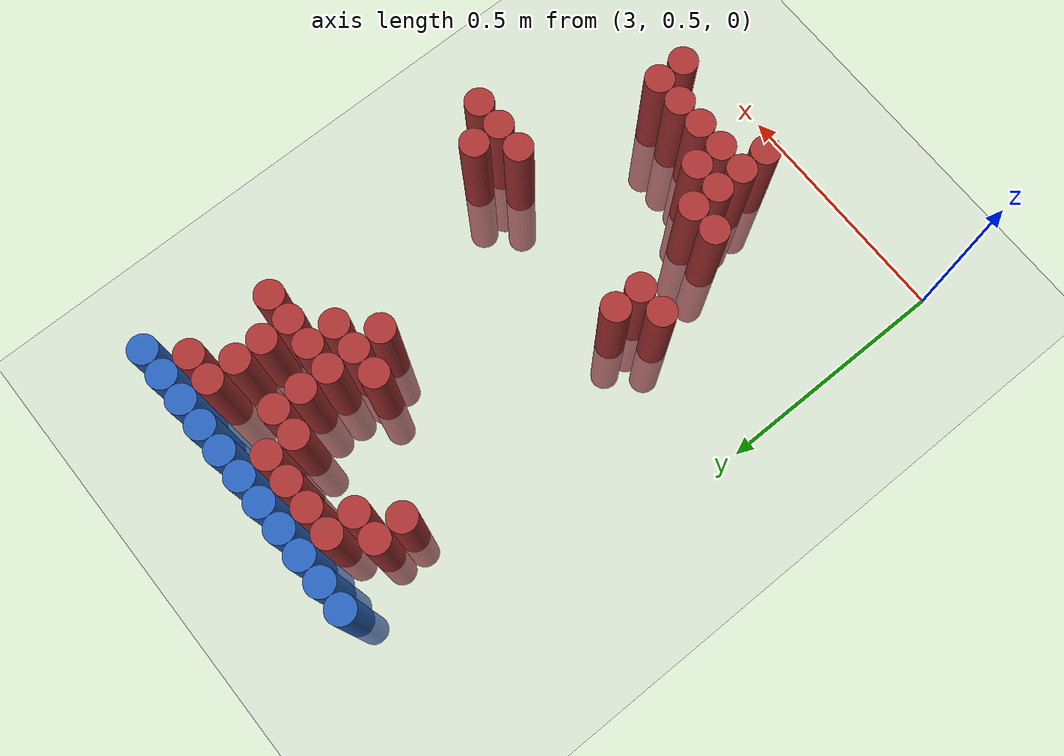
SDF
<sdf version="1.6">
 <world name="default">
  <model name="ground_plane">
   <static>1</static>
   <link name="link">
    <collision name="collision">
     <geometry><plane><normal>0 0 1</normal><size>100 100</size></plane></geometry>
     <surface><friction><ode><mu>100</mu><mu2>50</mu2></ode></friction></surface>
    </collision>
    <visual name="visual">
     <cast_shadows>0</cast_shadows>
     <geometry><plane><normal>0 0 1</normal><size>100 100</size></plane></geometry>
     <material>
      <script><uri>file://media/materials/scripts/gazebo.material</uri><name>Gazebo/Grey</name></script>
     </material>
    </visual>
   </link>
  </model>
  <model name="unit_cylinder_114">
   <static>1</static>
   <pose>3.210000 1.770000 0.000000 0.000000 0.000000 0.000000</pose>
   <link name="link">
    <inertial>
     <mass>1</mass>
     <inertia><ixx>0.145833</ixx><ixy>0</ixy><ixz>0</ixz><iyy>0.145833</iyy><iyz>0</iyz><izz>0.125</izz></inertia>
    </inertial>
    <collision name="collision">
     <geometry><cylinder><radius>0.030000</radius><length>0.5</length></cylinder></geometry>
    </collision>
    <visual name="visual">
     <geometry><cylinder><radius>0.030000</radius><length>0.5</length></cylinder></geometry>
     <material>
      <ambient>0.152000 0.379000 0.720000 1</ambient>
      <diffuse>0.152000 0.379000 0.720000 1</diffuse>
     </material>
     <material>
      <script><name>Gazebo/Grey</name><uri>file://media/materials/scripts/gazebo.material</uri></script>
     </material>
    </visual>
   </link>
  </model>
  <model name="unit_cylinder_115">
   <static>1</static>
   <pose>3.270000 1.770000 0.000000 0.000000 0.000000 0.000000</pose>
   <link name="link">
    <inertial>
     <mass>1</mass>
     <inertia><ixx>0.145833</ixx><ixy>0</ixy><ixz>0</ixz><iyy>0.145833</iyy><iyz>0</iyz><izz>0.125</izz></inertia>
    </inertial>
    <collision name="collision">
     <geometry><cylinder><radius>0.030000</radius><length>0.5</length></cylinder></geometry>
    </collision>
    <visual name="visual">
     <geometry><cylinder><radius>0.030000</radius><length>0.5</length></cylinder></geometry>
     <material>
      <ambient>0.152000 0.379000 0.720000 1</ambient>
      <diffuse>0.152000 0.379000 0.720000 1</diffuse>
     </material>
     <material>
      <script><name>Gazebo/Grey</name><uri>file://media/materials/scripts/gazebo.material</uri></script>
     </material>
    </visual>
   </link>
  </model>
  <model name="unit_cylinder_116">
   <static>1</static>
   <pose>3.330000 1.770000 0.000000 0.000000 0.000000 0.000000</pose>
   <link name="link">
    <inertial>
     <mass>1</mass>
     <inertia><ixx>0.145833</ixx><ixy>0</ixy><ixz>0</ixz><iyy>0.145833</iyy><iyz>0</iyz><izz>0.125</izz></inertia>
    </inertial>
    <collision name="collision">
     <geometry><cylinder><radius>0.030000</radius><length>0.5</length></cylinder></geometry>
    </collision>
    <visual name="visual">
     <geometry><cylinder><radius>0.030000</radius><length>0.5</length></cylinder></geometry>
     <material>
      <ambient>0.152000 0.379000 0.720000 1</ambient>
      <diffuse>0.152000 0.379000 0.720000 1</diffuse>
     </material>
     <material>
      <script><name>Gazebo/Grey</name><uri>file://media/materials/scripts/gazebo.material</uri></script>
     </material>
    </visual>
   </link>
  </model>
  <model name="unit_cylinder_117">
   <static>1</static>
   <pose>3.390000 1.770000 0.000000 0.000000 0.000000 0.000000</pose>
   <link name="link">
    <inertial>
     <mass>1</mass>
     <inertia><ixx>0.145833</ixx><ixy>0</ixy><ixz>0</ixz><iyy>0.145833</iyy><iyz>0</iyz><izz>0.125</izz></inertia>
    </inertial>
    <collision name="collision">
     <geometry><cylinder><radius>0.030000</radius><length>0.5</length></cylinder></geometry>
    </collision>
    <visual name="visual">
     <geometry><cylinder><radius>0.030000</radius><length>0.5</length></cylinder></geometry>
     <material>
      <ambient>0.152000 0.379000 0.720000 1</ambient>
      <diffuse>0.152000 0.379000 0.720000 1</diffuse>
     </material>
     <material>
      <script><name>Gazebo/Grey</name><uri>file://media/materials/scripts/gazebo.material</uri></script>
     </material>
    </visual>
   </link>
  </model>
  <model name="unit_cylinder_118">
   <static>1</static>
   <pose>3.450000 1.770000 0.000000 0.000000 0.000000 0.000000</pose>
   <link name="link">
    <inertial>
     <mass>1</mass>
     <inertia><ixx>0.145833</ixx><ixy>0</ixy><ixz>0</ixz><iyy>0.145833</iyy><iyz>0</iyz><izz>0.125</izz></inertia>
    </inertial>
    <collision name="collision">
     <geometry><cylinder><radius>0.030000</radius><length>0.5</length></cylinder></geometry>
    </collision>
    <visual name="visual">
     <geometry><cylinder><radius>0.030000</radius><length>0.5</length></cylinder></geometry>
     <material>
      <ambient>0.152000 0.379000 0.720000 1</ambient>
      <diffuse>0.152000 0.379000 0.720000 1</diffuse>
     </material>
     <material>
      <script><name>Gazebo/Grey</name><uri>file://media/materials/scripts/gazebo.material</uri></script>
     </material>
    </visual>
   </link>
  </model>
  <model name="unit_cylinder_119">
   <static>1</static>
   <pose>3.510000 1.770000 0.000000 0.000000 0.000000 0.000000</pose>
   <link name="link">
    <inertial>
     <mass>1</mass>
     <inertia><ixx>0.145833</ixx><ixy>0</ixy><ixz>0</ixz><iyy>0.145833</iyy><iyz>0</iyz><izz>0.125</izz></inertia>
    </inertial>
    <collision name="collision">
     <geometry><cylinder><radius>0.030000</radius><length>0.5</length></cylinder></geometry>
    </collision>
    <visual name="visual">
     <geometry><cylinder><radius>0.030000</radius><length>0.5</length></cylinder></geometry>
     <material>
      <ambient>0.152000 0.379000 0.720000 1</ambient>
      <diffuse>0.152000 0.379000 0.720000 1</diffuse>
     </material>
     <material>
      <script><name>Gazebo/Grey</name><uri>file://media/materials/scripts/gazebo.material</uri></script>
     </material>
    </visual>
   </link>
  </model>
  <model name="unit_cylinder_120">
   <static>1</static>
   <pose>3.570000 1.770000 0.000000 0.000000 0.000000 0.000000</pose>
   <link name="link">
    <inertial>
     <mass>1</mass>
     <inertia><ixx>0.145833</ixx><ixy>0</ixy><ixz>0</ixz><iyy>0.145833</iyy><iyz>0</iyz><izz>0.125</izz></inertia>
    </inertial>
    <collision name="collision">
     <geometry><cylinder><radius>0.030000</radius><length>0.5</length></cylinder></geometry>
    </collision>
    <visual name="visual">
     <geometry><cylinder><radius>0.030000</radius><length>0.5</length></cylinder></geometry>
     <material>
      <ambient>0.152000 0.379000 0.720000 1</ambient>
      <diffuse>0.152000 0.379000 0.720000 1</diffuse>
     </material>
     <material>
      <script><name>Gazebo/Grey</name><uri>file://media/materials/scripts/gazebo.material</uri></script>
     </material>
    </visual>
   </link>
  </model>
  <model name="unit_cylinder_121">
   <static>1</static>
   <pose>3.630000 1.770000 0.000000 0.000000 0.000000 0.000000</pose>
   <link name="link">
    <inertial>
     <mass>1</mass>
     <inertia><ixx>0.145833</ixx><ixy>0</ixy><ixz>0</ixz><iyy>0.145833</iyy><iyz>0</iyz><izz>0.125</izz></inertia>
    </inertial>
    <collision name="collision">
     <geometry><cylinder><radius>0.030000</radius><length>0.5</length></cylinder></geometry>
    </collision>
    <visual name="visual">
     <geometry><cylinder><radius>0.030000</radius><length>0.5</length></cylinder></geometry>
     <material>
      <ambient>0.152000 0.379000 0.720000 1</ambient>
      <diffuse>0.152000 0.379000 0.720000 1</diffuse>
     </material>
     <material>
      <script><name>Gazebo/Grey</name><uri>file://media/materials/scripts/gazebo.material</uri></script>
     </material>
    </visual>
   </link>
  </model>
  <model name="unit_cylinder_122">
   <static>1</static>
   <pose>3.690000 1.770000 0.000000 0.000000 0.000000 0.000000</pose>
   <link name="link">
    <inertial>
     <mass>1</mass>
     <inertia><ixx>0.145833</ixx><ixy>0</ixy><ixz>0</ixz><iyy>0.145833</iyy><iyz>0</iyz><izz>0.125</izz></inertia>
    </inertial>
    <collision name="collision">
     <geometry><cylinder><radius>0.030000</radius><length>0.5</length></cylinder></geometry>
    </collision>
    <visual name="visual">
     <geometry><cylinder><radius>0.030000</radius><length>0.5</length></cylinder></geometry>
     <material>
      <ambient>0.152000 0.379000 0.720000 1</ambient>
      <diffuse>0.152000 0.379000 0.720000 1</diffuse>
     </material>
     <material>
      <script><name>Gazebo/Grey</name><uri>file://media/materials/scripts/gazebo.material</uri></script>
     </material>
    </visual>
   </link>
  </model>
  <model name="unit_cylinder_123">
   <static>1</static>
   <pose>3.750000 1.770000 0.000000 0.000000 0.000000 0.000000</pose>
   <link name="link">
    <inertial>
     <mass>1</mass>
     <inertia><ixx>0.145833</ixx><ixy>0</ixy><ixz>0</ixz><iyy>0.145833</iyy><iyz>0</iyz><izz>0.125</izz></inertia>
    </inertial>
    <collision name="collision">
     <geometry><cylinder><radius>0.030000</radius><length>0.5</length></cylinder></geometry>
    </collision>
    <visual name="visual">
     <geometry><cylinder><radius>0.030000</radius><length>0.5</length></cylinder></geometry>
     <material>
      <ambient>0.152000 0.379000 0.720000 1</ambient>
      <diffuse>0.152000 0.379000 0.720000 1</diffuse>
     </material>
     <material>
      <script><name>Gazebo/Grey</name><uri>file://media/materials/scripts/gazebo.material</uri></script>
     </material>
    </visual>
   </link>
  </model>
  <model name="unit_cylinder_124">
   <static>1</static>
   <pose>3.810000 1.770000 0.000000 0.000000 0.000000 0.000000</pose>
   <link name="link">
    <inertial>
     <mass>1</mass>
     <inertia><ixx>0.145833</ixx><ixy>0</ixy><ixz>0</ixz><iyy>0.145833</iyy><iyz>0</iyz><izz>0.125</izz></inertia>
    </inertial>
    <collision name="collision">
     <geometry><cylinder><radius>0.030000</radius><length>0.5</length></cylinder></geometry>
    </collision>
    <visual name="visual">
     <geometry><cylinder><radius>0.030000</radius><length>0.5</length></cylinder></geometry>
     <material>
      <ambient>0.152000 0.379000 0.720000 1</ambient>
      <diffuse>0.152000 0.379000 0.720000 1</diffuse>
     </material>
     <material>
      <script><name>Gazebo/Grey</name><uri>file://media/materials/scripts/gazebo.material</uri></script>
     </material>
    </visual>
   </link>
  </model>
  <model name="unit_cylinder_137">
   <static>1</static>
   <pose>3.330000 1.710000 0.000000 0.000000 0.000000 0.000000</pose>
   <link name="link">
    <inertial>
     <mass>1</mass>
     <inertia><ixx>0.145833</ixx><ixy>0</ixy><ixz>0</ixz><iyy>0.145833</iyy><iyz>0</iyz><izz>0.125</izz></inertia>
    </inertial>
    <collision name="collision">
     <geometry><cylinder><radius>0.030000</radius><length>0.5</length></cylinder></geometry>
    </collision>
    <visual name="visual">
     <geometry><cylinder><radius>0.030000</radius><length>0.5</length></cylinder></geometry>
     <material>
      <ambient>0.648000 0.192000 0.192000 1</ambient>
      <diffuse>0.648000 0.192000 0.192000 1</diffuse>
     </material>
     <material>
      <script><name>Gazebo/Grey</name><uri>file://media/materials/scripts/gazebo.material</uri></script>
     </material>
    </visual>
   </link>
  </model>
  <model name="unit_cylinder_138">
   <static>1</static>
   <pose>3.390000 1.710000 0.000000 0.000000 0.000000 0.000000</pose>
   <link name="link">
    <inertial>
     <mass>1</mass>
     <inertia><ixx>0.145833</ixx><ixy>0</ixy><ixz>0</ixz><iyy>0.145833</iyy><iyz>0</iyz><izz>0.125</izz></inertia>
    </inertial>
    <collision name="collision">
     <geometry><cylinder><radius>0.030000</radius><length>0.5</length></cylinder></geometry>
    </collision>
    <visual name="visual">
     <geometry><cylinder><radius>0.030000</radius><length>0.5</length></cylinder></geometry>
     <material>
      <ambient>0.648000 0.192000 0.192000 1</ambient>
      <diffuse>0.648000 0.192000 0.192000 1</diffuse>
     </material>
     <material>
      <script><name>Gazebo/Grey</name><uri>file://media/materials/scripts/gazebo.material</uri></script>
     </material>
    </visual>
   </link>
  </model>
  <model name="unit_cylinder_139">
   <static>1</static>
   <pose>3.450000 1.710000 0.000000 0.000000 0.000000 0.000000</pose>
   <link name="link">
    <inertial>
     <mass>1</mass>
     <inertia><ixx>0.145833</ixx><ixy>0</ixy><ixz>0</ixz><iyy>0.145833</iyy><iyz>0</iyz><izz>0.125</izz></inertia>
    </inertial>
    <collision name="collision">
     <geometry><cylinder><radius>0.030000</radius><length>0.5</length></cylinder></geometry>
    </collision>
    <visual name="visual">
     <geometry><cylinder><radius>0.030000</radius><length>0.5</length></cylinder></geometry>
     <material>
      <ambient>0.648000 0.192000 0.192000 1</ambient>
      <diffuse>0.648000 0.192000 0.192000 1</diffuse>
     </material>
     <material>
      <script><name>Gazebo/Grey</name><uri>file://media/materials/scripts/gazebo.material</uri></script>
     </material>
    </visual>
   </link>
  </model>
  <model name="unit_cylinder_140">
   <static>1</static>
   <pose>3.510000 1.710000 0.000000 0.000000 0.000000 0.000000</pose>
   <link name="link">
    <inertial>
     <mass>1</mass>
     <inertia><ixx>0.145833</ixx><ixy>0</ixy><ixz>0</ixz><iyy>0.145833</iyy><iyz>0</iyz><izz>0.125</izz></inertia>
    </inertial>
    <collision name="collision">
     <geometry><cylinder><radius>0.030000</radius><length>0.5</length></cylinder></geometry>
    </collision>
    <visual name="visual">
     <geometry><cylinder><radius>0.030000</radius><length>0.5</length></cylinder></geometry>
     <material>
      <ambient>0.648000 0.192000 0.192000 1</ambient>
      <diffuse>0.648000 0.192000 0.192000 1</diffuse>
     </material>
     <material>
      <script><name>Gazebo/Grey</name><uri>file://media/materials/scripts/gazebo.material</uri></script>
     </material>
    </visual>
   </link>
  </model>
  <model name="unit_cylinder_141">
   <static>1</static>
   <pose>3.690000 1.710000 0.000000 0.000000 0.000000 0.000000</pose>
   <link name="link">
    <inertial>
     <mass>1</mass>
     <inertia><ixx>0.145833</ixx><ixy>0</ixy><ixz>0</ixz><iyy>0.145833</iyy><iyz>0</iyz><izz>0.125</izz></inertia>
    </inertial>
    <collision name="collision">
     <geometry><cylinder><radius>0.030000</radius><length>0.5</length></cylinder></geometry>
    </collision>
    <visual name="visual">
     <geometry><cylinder><radius>0.030000</radius><length>0.5</length></cylinder></geometry>
     <material>
      <ambient>0.648000 0.192000 0.192000 1</ambient>
      <diffuse>0.648000 0.192000 0.192000 1</diffuse>
     </material>
     <material>
      <script><name>Gazebo/Grey</name><uri>file://media/materials/scripts/gazebo.material</uri></script>
     </material>
    </visual>
   </link>
  </model>
  <model name="unit_cylinder_142">
   <static>1</static>
   <pose>3.750000 1.710000 0.000000 0.000000 0.000000 0.000000</pose>
   <link name="link">
    <inertial>
     <mass>1</mass>
     <inertia><ixx>0.145833</ixx><ixy>0</ixy><ixz>0</ixz><iyy>0.145833</iyy><iyz>0</iyz><izz>0.125</izz></inertia>
    </inertial>
    <collision name="collision">
     <geometry><cylinder><radius>0.030000</radius><length>0.5</length></cylinder></geometry>
    </collision>
    <visual name="visual">
     <geometry><cylinder><radius>0.030000</radius><length>0.5</length></cylinder></geometry>
     <material>
      <ambient>0.648000 0.192000 0.192000 1</ambient>
      <diffuse>0.648000 0.192000 0.192000 1</diffuse>
     </material>
     <material>
      <script><name>Gazebo/Grey</name><uri>file://media/materials/scripts/gazebo.material</uri></script>
     </material>
    </visual>
   </link>
  </model>
  <model name="unit_cylinder_149">
   <static>1</static>
   <pose>3.270000 1.650000 0.000000 0.000000 0.000000 0.000000</pose>
   <link name="link">
    <inertial>
     <mass>1</mass>
     <inertia><ixx>0.145833</ixx><ixy>0</ixy><ixz>0</ixz><iyy>0.145833</iyy><iyz>0</iyz><izz>0.125</izz></inertia>
    </inertial>
    <collision name="collision">
     <geometry><cylinder><radius>0.030000</radius><length>0.5</length></cylinder></geometry>
    </collision>
    <visual name="visual">
     <geometry><cylinder><radius>0.030000</radius><length>0.5</length></cylinder></geometry>
     <material>
      <ambient>0.648000 0.192000 0.192000 1</ambient>
      <diffuse>0.648000 0.192000 0.192000 1</diffuse>
     </material>
     <material>
      <script><name>Gazebo/Grey</name><uri>file://media/materials/scripts/gazebo.material</uri></script>
     </material>
    </visual>
   </link>
  </model>
  <model name="unit_cylinder_150">
   <static>1</static>
   <pose>3.330000 1.650000 0.000000 0.000000 0.000000 0.000000</pose>
   <link name="link">
    <inertial>
     <mass>1</mass>
     <inertia><ixx>0.145833</ixx><ixy>0</ixy><ixz>0</ixz><iyy>0.145833</iyy><iyz>0</iyz><izz>0.125</izz></inertia>
    </inertial>
    <collision name="collision">
     <geometry><cylinder><radius>0.030000</radius><length>0.5</length></cylinder></geometry>
    </collision>
    <visual name="visual">
     <geometry><cylinder><radius>0.030000</radius><length>0.5</length></cylinder></geometry>
     <material>
      <ambient>0.648000 0.192000 0.192000 1</ambient>
      <diffuse>0.648000 0.192000 0.192000 1</diffuse>
     </material>
     <material>
      <script><name>Gazebo/Grey</name><uri>file://media/materials/scripts/gazebo.material</uri></script>
     </material>
    </visual>
   </link>
  </model>
  <model name="unit_cylinder_151">
   <static>1</static>
   <pose>3.510000 1.650000 0.000000 0.000000 0.000000 0.000000</pose>
   <link name="link">
    <inertial>
     <mass>1</mass>
     <inertia><ixx>0.145833</ixx><ixy>0</ixy><ixz>0</ixz><iyy>0.145833</iyy><iyz>0</iyz><izz>0.125</izz></inertia>
    </inertial>
    <collision name="collision">
     <geometry><cylinder><radius>0.030000</radius><length>0.5</length></cylinder></geometry>
    </collision>
    <visual name="visual">
     <geometry><cylinder><radius>0.030000</radius><length>0.5</length></cylinder></geometry>
     <material>
      <ambient>0.648000 0.192000 0.192000 1</ambient>
      <diffuse>0.648000 0.192000 0.192000 1</diffuse>
     </material>
     <material>
      <script><name>Gazebo/Grey</name><uri>file://media/materials/scripts/gazebo.material</uri></script>
     </material>
    </visual>
   </link>
  </model>
  <model name="unit_cylinder_152">
   <static>1</static>
   <pose>3.570000 1.650000 0.000000 0.000000 0.000000 0.000000</pose>
   <link name="link">
    <inertial>
     <mass>1</mass>
     <inertia><ixx>0.145833</ixx><ixy>0</ixy><ixz>0</ixz><iyy>0.145833</iyy><iyz>0</iyz><izz>0.125</izz></inertia>
    </inertial>
    <collision name="collision">
     <geometry><cylinder><radius>0.030000</radius><length>0.5</length></cylinder></geometry>
    </collision>
    <visual name="visual">
     <geometry><cylinder><radius>0.030000</radius><length>0.5</length></cylinder></geometry>
     <material>
      <ambient>0.648000 0.192000 0.192000 1</ambient>
      <diffuse>0.648000 0.192000 0.192000 1</diffuse>
     </material>
     <material>
      <script><name>Gazebo/Grey</name><uri>file://media/materials/scripts/gazebo.material</uri></script>
     </material>
    </visual>
   </link>
  </model>
  <model name="unit_cylinder_153">
   <static>1</static>
   <pose>3.690000 1.650000 0.000000 0.000000 0.000000 0.000000</pose>
   <link name="link">
    <inertial>
     <mass>1</mass>
     <inertia><ixx>0.145833</ixx><ixy>0</ixy><ixz>0</ixz><iyy>0.145833</iyy><iyz>0</iyz><izz>0.125</izz></inertia>
    </inertial>
    <collision name="collision">
     <geometry><cylinder><radius>0.030000</radius><length>0.5</length></cylinder></geometry>
    </collision>
    <visual name="visual">
     <geometry><cylinder><radius>0.030000</radius><length>0.5</length></cylinder></geometry>
     <material>
      <ambient>0.648000 0.192000 0.192000 1</ambient>
      <diffuse>0.648000 0.192000 0.192000 1</diffuse>
     </material>
     <material>
      <script><name>Gazebo/Grey</name><uri>file://media/materials/scripts/gazebo.material</uri></script>
     </material>
    </visual>
   </link>
  </model>
  <model name="unit_cylinder_160">
   <static>1</static>
   <pose>3.270000 1.590000 0.000000 0.000000 0.000000 0.000000</pose>
   <link name="link">
    <inertial>
     <mass>1</mass>
     <inertia><ixx>0.145833</ixx><ixy>0</ixy><ixz>0</ixz><iyy>0.145833</iyy><iyz>0</iyz><izz>0.125</izz></inertia>
    </inertial>
    <collision name="collision">
     <geometry><cylinder><radius>0.030000</radius><length>0.5</length></cylinder></geometry>
    </collision>
    <visual name="visual">
     <geometry><cylinder><radius>0.030000</radius><length>0.5</length></cylinder></geometry>
     <material>
      <ambient>0.648000 0.192000 0.192000 1</ambient>
      <diffuse>0.648000 0.192000 0.192000 1</diffuse>
     </material>
     <material>
      <script><name>Gazebo/Grey</name><uri>file://media/materials/scripts/gazebo.material</uri></script>
     </material>
    </visual>
   </link>
  </model>
  <model name="unit_cylinder_161">
   <static>1</static>
   <pose>3.570000 1.590000 0.000000 0.000000 0.000000 0.000000</pose>
   <link name="link">
    <inertial>
     <mass>1</mass>
     <inertia><ixx>0.145833</ixx><ixy>0</ixy><ixz>0</ixz><iyy>0.145833</iyy><iyz>0</iyz><izz>0.125</izz></inertia>
    </inertial>
    <collision name="collision">
     <geometry><cylinder><radius>0.030000</radius><length>0.5</length></cylinder></geometry>
    </collision>
    <visual name="visual">
     <geometry><cylinder><radius>0.030000</radius><length>0.5</length></cylinder></geometry>
     <material>
      <ambient>0.648000 0.192000 0.192000 1</ambient>
      <diffuse>0.648000 0.192000 0.192000 1</diffuse>
     </material>
     <material>
      <script><name>Gazebo/Grey</name><uri>file://media/materials/scripts/gazebo.material</uri></script>
     </material>
    </visual>
   </link>
  </model>
  <model name="unit_cylinder_162">
   <static>1</static>
   <pose>3.690000 1.590000 0.000000 0.000000 0.000000 0.000000</pose>
   <link name="link">
    <inertial>
     <mass>1</mass>
     <inertia><ixx>0.145833</ixx><ixy>0</ixy><ixz>0</ixz><iyy>0.145833</iyy><iyz>0</iyz><izz>0.125</izz></inertia>
    </inertial>
    <collision name="collision">
     <geometry><cylinder><radius>0.030000</radius><length>0.5</length></cylinder></geometry>
    </collision>
    <visual name="visual">
     <geometry><cylinder><radius>0.030000</radius><length>0.5</length></cylinder></geometry>
     <material>
      <ambient>0.648000 0.192000 0.192000 1</ambient>
      <diffuse>0.648000 0.192000 0.192000 1</diffuse>
     </material>
     <material>
      <script><name>Gazebo/Grey</name><uri>file://media/materials/scripts/gazebo.material</uri></script>
     </material>
    </visual>
   </link>
  </model>
  <model name="unit_cylinder_169">
   <static>1</static>
   <pose>3.570000 1.530000 0.000000 0.000000 0.000000 0.000000</pose>
   <link name="link">
    <inertial>
     <mass>1</mass>
     <inertia><ixx>0.145833</ixx><ixy>0</ixy><ixz>0</ixz><iyy>0.145833</iyy><iyz>0</iyz><izz>0.125</izz></inertia>
    </inertial>
    <collision name="collision">
     <geometry><cylinder><radius>0.030000</radius><length>0.5</length></cylinder></geometry>
    </collision>
    <visual name="visual">
     <geometry><cylinder><radius>0.030000</radius><length>0.5</length></cylinder></geometry>
     <material>
      <ambient>0.648000 0.192000 0.192000 1</ambient>
      <diffuse>0.648000 0.192000 0.192000 1</diffuse>
     </material>
     <material>
      <script><name>Gazebo/Grey</name><uri>file://media/materials/scripts/gazebo.material</uri></script>
     </material>
    </visual>
   </link>
  </model>
  <model name="unit_cylinder_170">
   <static>1</static>
   <pose>3.630000 1.530000 0.000000 0.000000 0.000000 0.000000</pose>
   <link name="link">
    <inertial>
     <mass>1</mass>
     <inertia><ixx>0.145833</ixx><ixy>0</ixy><ixz>0</ixz><iyy>0.145833</iyy><iyz>0</iyz><izz>0.125</izz></inertia>
    </inertial>
    <collision name="collision">
     <geometry><cylinder><radius>0.030000</radius><length>0.5</length></cylinder></geometry>
    </collision>
    <visual name="visual">
     <geometry><cylinder><radius>0.030000</radius><length>0.5</length></cylinder></geometry>
     <material>
      <ambient>0.648000 0.192000 0.192000 1</ambient>
      <diffuse>0.648000 0.192000 0.192000 1</diffuse>
     </material>
     <material>
      <script><name>Gazebo/Grey</name><uri>file://media/materials/scripts/gazebo.material</uri></script>
     </material>
    </visual>
   </link>
  </model>
  <model name="unit_cylinder_171">
   <static>1</static>
   <pose>3.690000 1.530000 0.000000 0.000000 0.000000 0.000000</pose>
   <link name="link">
    <inertial>
     <mass>1</mass>
     <inertia><ixx>0.145833</ixx><ixy>0</ixy><ixz>0</ixz><iyy>0.145833</iyy><iyz>0</iyz><izz>0.125</izz></inertia>
    </inertial>
    <collision name="collision">
     <geometry><cylinder><radius>0.030000</radius><length>0.5</length></cylinder></geometry>
    </collision>
    <visual name="visual">
     <geometry><cylinder><radius>0.030000</radius><length>0.5</length></cylinder></geometry>
     <material>
      <ambient>0.648000 0.192000 0.192000 1</ambient>
      <diffuse>0.648000 0.192000 0.192000 1</diffuse>
     </material>
     <material>
      <script><name>Gazebo/Grey</name><uri>file://media/materials/scripts/gazebo.material</uri></script>
     </material>
    </visual>
   </link>
  </model>
  <model name="unit_cylinder_172">
   <static>1</static>
   <pose>3.750000 1.530000 0.000000 0.000000 0.000000 0.000000</pose>
   <link name="link">
    <inertial>
     <mass>1</mass>
     <inertia><ixx>0.145833</ixx><ixy>0</ixy><ixz>0</ixz><iyy>0.145833</iyy><iyz>0</iyz><izz>0.125</izz></inertia>
    </inertial>
    <collision name="collision">
     <geometry><cylinder><radius>0.030000</radius><length>0.5</length></cylinder></geometry>
    </collision>
    <visual name="visual">
     <geometry><cylinder><radius>0.030000</radius><length>0.5</length></cylinder></geometry>
     <material>
      <ambient>0.648000 0.192000 0.192000 1</ambient>
      <diffuse>0.648000 0.192000 0.192000 1</diffuse>
     </material>
     <material>
      <script><name>Gazebo/Grey</name><uri>file://media/materials/scripts/gazebo.material</uri></script>
     </material>
    </visual>
   </link>
  </model>
  <model name="unit_cylinder_178">
   <static>1</static>
   <pose>3.510000 1.470000 0.000000 0.000000 0.000000 0.000000</pose>
   <link name="link">
    <inertial>
     <mass>1</mass>
     <inertia><ixx>0.145833</ixx><ixy>0</ixy><ixz>0</ixz><iyy>0.145833</iyy><iyz>0</iyz><izz>0.125</izz></inertia>
    </inertial>
    <collision name="collision">
     <geometry><cylinder><radius>0.030000</radius><length>0.5</length></cylinder></geometry>
    </collision>
    <visual name="visual">
     <geometry><cylinder><radius>0.030000</radius><length>0.5</length></cylinder></geometry>
     <material>
      <ambient>0.648000 0.192000 0.192000 1</ambient>
      <diffuse>0.648000 0.192000 0.192000 1</diffuse>
     </material>
     <material>
      <script><name>Gazebo/Grey</name><uri>file://media/materials/scripts/gazebo.material</uri></script>
     </material>
    </visual>
   </link>
  </model>
  <model name="unit_cylinder_179">
   <static>1</static>
   <pose>3.570000 1.470000 0.000000 0.000000 0.000000 0.000000</pose>
   <link name="link">
    <inertial>
     <mass>1</mass>
     <inertia><ixx>0.145833</ixx><ixy>0</ixy><ixz>0</ixz><iyy>0.145833</iyy><iyz>0</iyz><izz>0.125</izz></inertia>
    </inertial>
    <collision name="collision">
     <geometry><cylinder><radius>0.030000</radius><length>0.5</length></cylinder></geometry>
    </collision>
    <visual name="visual">
     <geometry><cylinder><radius>0.030000</radius><length>0.5</length></cylinder></geometry>
     <material>
      <ambient>0.648000 0.192000 0.192000 1</ambient>
      <diffuse>0.648000 0.192000 0.192000 1</diffuse>
     </material>
     <material>
      <script><name>Gazebo/Grey</name><uri>file://media/materials/scripts/gazebo.material</uri></script>
     </material>
    </visual>
   </link>
  </model>
  <model name="unit_cylinder_180">
   <static>1</static>
   <pose>3.630000 1.470000 0.000000 0.000000 0.000000 0.000000</pose>
   <link name="link">
    <inertial>
     <mass>1</mass>
     <inertia><ixx>0.145833</ixx><ixy>0</ixy><ixz>0</ixz><iyy>0.145833</iyy><iyz>0</iyz><izz>0.125</izz></inertia>
    </inertial>
    <collision name="collision">
     <geometry><cylinder><radius>0.030000</radius><length>0.5</length></cylinder></geometry>
    </collision>
    <visual name="visual">
     <geometry><cylinder><radius>0.030000</radius><length>0.5</length></cylinder></geometry>
     <material>
      <ambient>0.648000 0.192000 0.192000 1</ambient>
      <diffuse>0.648000 0.192000 0.192000 1</diffuse>
     </material>
     <material>
      <script><name>Gazebo/Grey</name><uri>file://media/materials/scripts/gazebo.material</uri></script>
     </material>
    </visual>
   </link>
  </model>
  <model name="unit_cylinder_185">
   <static>1</static>
   <pose>3.570000 1.410000 0.000000 0.000000 0.000000 0.000000</pose>
   <link name="link">
    <inertial>
     <mass>1</mass>
     <inertia><ixx>0.145833</ixx><ixy>0</ixy><ixz>0</ixz><iyy>0.145833</iyy><iyz>0</iyz><izz>0.125</izz></inertia>
    </inertial>
    <collision name="collision">
     <geometry><cylinder><radius>0.030000</radius><length>0.5</length></cylinder></geometry>
    </collision>
    <visual name="visual">
     <geometry><cylinder><radius>0.030000</radius><length>0.5</length></cylinder></geometry>
     <material>
      <ambient>0.648000 0.192000 0.192000 1</ambient>
      <diffuse>0.648000 0.192000 0.192000 1</diffuse>
     </material>
     <material>
      <script><name>Gazebo/Grey</name><uri>file://media/materials/scripts/gazebo.material</uri></script>
     </material>
    </visual>
   </link>
  </model>
  <model name="unit_cylinder_194">
   <static>1</static>
   <pose>3.330000 1.050000 0.000000 0.000000 0.000000 0.000000</pose>
   <link name="link">
    <inertial>
     <mass>1</mass>
     <inertia><ixx>0.145833</ixx><ixy>0</ixy><ixz>0</ixz><iyy>0.145833</iyy><iyz>0</iyz><izz>0.125</izz></inertia>
    </inertial>
    <collision name="collision">
     <geometry><cylinder><radius>0.030000</radius><length>0.5</length></cylinder></geometry>
    </collision>
    <visual name="visual">
     <geometry><cylinder><radius>0.030000</radius><length>0.5</length></cylinder></geometry>
     <material>
      <ambient>0.648000 0.192000 0.192000 1</ambient>
      <diffuse>0.648000 0.192000 0.192000 1</diffuse>
     </material>
     <material>
      <script><name>Gazebo/Grey</name><uri>file://media/materials/scripts/gazebo.material</uri></script>
     </material>
    </visual>
   </link>
  </model>
  <model name="unit_cylinder_195">
   <static>1</static>
   <pose>3.750000 1.050000 0.000000 0.000000 0.000000 0.000000</pose>
   <link name="link">
    <inertial>
     <mass>1</mass>
     <inertia><ixx>0.145833</ixx><ixy>0</ixy><ixz>0</ixz><iyy>0.145833</iyy><iyz>0</iyz><izz>0.125</izz></inertia>
    </inertial>
    <collision name="collision">
     <geometry><cylinder><radius>0.030000</radius><length>0.5</length></cylinder></geometry>
    </collision>
    <visual name="visual">
     <geometry><cylinder><radius>0.030000</radius><length>0.5</length></cylinder></geometry>
     <material>
      <ambient>0.648000 0.192000 0.192000 1</ambient>
      <diffuse>0.648000 0.192000 0.192000 1</diffuse>
     </material>
     <material>
      <script><name>Gazebo/Grey</name><uri>file://media/materials/scripts/gazebo.material</uri></script>
     </material>
    </visual>
   </link>
  </model>
  <model name="unit_cylinder_198">
   <static>1</static>
   <pose>3.270000 0.990000 0.000000 0.000000 0.000000 0.000000</pose>
   <link name="link">
    <inertial>
     <mass>1</mass>
     <inertia><ixx>0.145833</ixx><ixy>0</ixy><ixz>0</ixz><iyy>0.145833</iyy><iyz>0</iyz><izz>0.125</izz></inertia>
    </inertial>
    <collision name="collision">
     <geometry><cylinder><radius>0.030000</radius><length>0.5</length></cylinder></geometry>
    </collision>
    <visual name="visual">
     <geometry><cylinder><radius>0.030000</radius><length>0.5</length></cylinder></geometry>
     <material>
      <ambient>0.648000 0.192000 0.192000 1</ambient>
      <diffuse>0.648000 0.192000 0.192000 1</diffuse>
     </material>
     <material>
      <script><name>Gazebo/Grey</name><uri>file://media/materials/scripts/gazebo.material</uri></script>
     </material>
    </visual>
   </link>
  </model>
  <model name="unit_cylinder_199">
   <static>1</static>
   <pose>3.330000 0.990000 0.000000 0.000000 0.000000 0.000000</pose>
   <link name="link">
    <inertial>
     <mass>1</mass>
     <inertia><ixx>0.145833</ixx><ixy>0</ixy><ixz>0</ixz><iyy>0.145833</iyy><iyz>0</iyz><izz>0.125</izz></inertia>
    </inertial>
    <collision name="collision">
     <geometry><cylinder><radius>0.030000</radius><length>0.5</length></cylinder></geometry>
    </collision>
    <visual name="visual">
     <geometry><cylinder><radius>0.030000</radius><length>0.5</length></cylinder></geometry>
     <material>
      <ambient>0.648000 0.192000 0.192000 1</ambient>
      <diffuse>0.648000 0.192000 0.192000 1</diffuse>
     </material>
     <material>
      <script><name>Gazebo/Grey</name><uri>file://media/materials/scripts/gazebo.material</uri></script>
     </material>
    </visual>
   </link>
  </model>
  <model name="unit_cylinder_200">
   <static>1</static>
   <pose>3.690000 0.990000 0.000000 0.000000 0.000000 0.000000</pose>
   <link name="link">
    <inertial>
     <mass>1</mass>
     <inertia><ixx>0.145833</ixx><ixy>0</ixy><ixz>0</ixz><iyy>0.145833</iyy><iyz>0</iyz><izz>0.125</izz></inertia>
    </inertial>
    <collision name="collision">
     <geometry><cylinder><radius>0.030000</radius><length>0.5</length></cylinder></geometry>
    </collision>
    <visual name="visual">
     <geometry><cylinder><radius>0.030000</radius><length>0.5</length></cylinder></geometry>
     <material>
      <ambient>0.648000 0.192000 0.192000 1</ambient>
      <diffuse>0.648000 0.192000 0.192000 1</diffuse>
     </material>
     <material>
      <script><name>Gazebo/Grey</name><uri>file://media/materials/scripts/gazebo.material</uri></script>
     </material>
    </visual>
   </link>
  </model>
  <model name="unit_cylinder_201">
   <static>1</static>
   <pose>3.750000 0.990000 0.000000 0.000000 0.000000 0.000000</pose>
   <link name="link">
    <inertial>
     <mass>1</mass>
     <inertia><ixx>0.145833</ixx><ixy>0</ixy><ixz>0</ixz><iyy>0.145833</iyy><iyz>0</iyz><izz>0.125</izz></inertia>
    </inertial>
    <collision name="collision">
     <geometry><cylinder><radius>0.030000</radius><length>0.5</length></cylinder></geometry>
    </collision>
    <visual name="visual">
     <geometry><cylinder><radius>0.030000</radius><length>0.5</length></cylinder></geometry>
     <material>
      <ambient>0.648000 0.192000 0.192000 1</ambient>
      <diffuse>0.648000 0.192000 0.192000 1</diffuse>
     </material>
     <material>
      <script><name>Gazebo/Grey</name><uri>file://media/materials/scripts/gazebo.material</uri></script>
     </material>
    </visual>
   </link>
  </model>
  <model name="unit_cylinder_202">
   <static>1</static>
   <pose>3.810000 0.990000 0.000000 0.000000 0.000000 0.000000</pose>
   <link name="link">
    <inertial>
     <mass>1</mass>
     <inertia><ixx>0.145833</ixx><ixy>0</ixy><ixz>0</ixz><iyy>0.145833</iyy><iyz>0</iyz><izz>0.125</izz></inertia>
    </inertial>
    <collision name="collision">
     <geometry><cylinder><radius>0.030000</radius><length>0.5</length></cylinder></geometry>
    </collision>
    <visual name="visual">
     <geometry><cylinder><radius>0.030000</radius><length>0.5</length></cylinder></geometry>
     <material>
      <ambient>0.648000 0.192000 0.192000 1</ambient>
      <diffuse>0.648000 0.192000 0.192000 1</diffuse>
     </material>
     <material>
      <script><name>Gazebo/Grey</name><uri>file://media/materials/scripts/gazebo.material</uri></script>
     </material>
    </visual>
   </link>
  </model>
  <model name="unit_cylinder_208">
   <static>1</static>
   <pose>3.330000 0.810000 0.000000 0.000000 0.000000 0.000000</pose>
   <link name="link">
    <inertial>
     <mass>1</mass>
     <inertia><ixx>0.145833</ixx><ixy>0</ixy><ixz>0</ixz><iyy>0.145833</iyy><iyz>0</iyz><izz>0.125</izz></inertia>
    </inertial>
    <collision name="collision">
     <geometry><cylinder><radius>0.030000</radius><length>0.5</length></cylinder></geometry>
    </collision>
    <visual name="visual">
     <geometry><cylinder><radius>0.030000</radius><length>0.5</length></cylinder></geometry>
     <material>
      <ambient>0.648000 0.192000 0.192000 1</ambient>
      <diffuse>0.648000 0.192000 0.192000 1</diffuse>
     </material>
     <material>
      <script><name>Gazebo/Grey</name><uri>file://media/materials/scripts/gazebo.material</uri></script>
     </material>
    </visual>
   </link>
  </model>
  <model name="unit_cylinder_209">
   <static>1</static>
   <pose>3.390000 0.810000 0.000000 0.000000 0.000000 0.000000</pose>
   <link name="link">
    <inertial>
     <mass>1</mass>
     <inertia><ixx>0.145833</ixx><ixy>0</ixy><ixz>0</ixz><iyy>0.145833</iyy><iyz>0</iyz><izz>0.125</izz></inertia>
    </inertial>
    <collision name="collision">
     <geometry><cylinder><radius>0.030000</radius><length>0.5</length></cylinder></geometry>
    </collision>
    <visual name="visual">
     <geometry><cylinder><radius>0.030000</radius><length>0.5</length></cylinder></geometry>
     <material>
      <ambient>0.648000 0.192000 0.192000 1</ambient>
      <diffuse>0.648000 0.192000 0.192000 1</diffuse>
     </material>
     <material>
      <script><name>Gazebo/Grey</name><uri>file://media/materials/scripts/gazebo.material</uri></script>
     </material>
    </visual>
   </link>
  </model>
  <model name="unit_cylinder_214">
   <static>1</static>
   <pose>3.390000 0.750000 0.000000 0.000000 0.000000 0.000000</pose>
   <link name="link">
    <inertial>
     <mass>1</mass>
     <inertia><ixx>0.145833</ixx><ixy>0</ixy><ixz>0</ixz><iyy>0.145833</iyy><iyz>0</iyz><izz>0.125</izz></inertia>
    </inertial>
    <collision name="collision">
     <geometry><cylinder><radius>0.030000</radius><length>0.5</length></cylinder></geometry>
    </collision>
    <visual name="visual">
     <geometry><cylinder><radius>0.030000</radius><length>0.5</length></cylinder></geometry>
     <material>
      <ambient>0.648000 0.192000 0.192000 1</ambient>
      <diffuse>0.648000 0.192000 0.192000 1</diffuse>
     </material>
     <material>
      <script><name>Gazebo/Grey</name><uri>file://media/materials/scripts/gazebo.material</uri></script>
     </material>
    </visual>
   </link>
  </model>
  <model name="unit_cylinder_215">
   <static>1</static>
   <pose>3.450000 0.750000 0.000000 0.000000 0.000000 0.000000</pose>
   <link name="link">
    <inertial>
     <mass>1</mass>
     <inertia><ixx>0.145833</ixx><ixy>0</ixy><ixz>0</ixz><iyy>0.145833</iyy><iyz>0</iyz><izz>0.125</izz></inertia>
    </inertial>
    <collision name="collision">
     <geometry><cylinder><radius>0.030000</radius><length>0.5</length></cylinder></geometry>
    </collision>
    <visual name="visual">
     <geometry><cylinder><radius>0.030000</radius><length>0.5</length></cylinder></geometry>
     <material>
      <ambient>0.648000 0.192000 0.192000 1</ambient>
      <diffuse>0.648000 0.192000 0.192000 1</diffuse>
     </material>
     <material>
      <script><name>Gazebo/Grey</name><uri>file://media/materials/scripts/gazebo.material</uri></script>
     </material>
    </visual>
   </link>
  </model>
  <model name="unit_cylinder_223">
   <static>1</static>
   <pose>3.390000 0.690000 0.000000 0.000000 0.000000 0.000000</pose>
   <link name="link">
    <inertial>
     <mass>1</mass>
     <inertia><ixx>0.145833</ixx><ixy>0</ixy><ixz>0</ixz><iyy>0.145833</iyy><iyz>0</iyz><izz>0.125</izz></inertia>
    </inertial>
    <collision name="collision">
     <geometry><cylinder><radius>0.030000</radius><length>0.5</length></cylinder></geometry>
    </collision>
    <visual name="visual">
     <geometry><cylinder><radius>0.030000</radius><length>0.5</length></cylinder></geometry>
     <material>
      <ambient>0.648000 0.192000 0.192000 1</ambient>
      <diffuse>0.648000 0.192000 0.192000 1</diffuse>
     </material>
     <material>
      <script><name>Gazebo/Grey</name><uri>file://media/materials/scripts/gazebo.material</uri></script>
     </material>
    </visual>
   </link>
  </model>
  <model name="unit_cylinder_224">
   <static>1</static>
   <pose>3.450000 0.690000 0.000000 0.000000 0.000000 0.000000</pose>
   <link name="link">
    <inertial>
     <mass>1</mass>
     <inertia><ixx>0.145833</ixx><ixy>0</ixy><ixz>0</ixz><iyy>0.145833</iyy><iyz>0</iyz><izz>0.125</izz></inertia>
    </inertial>
    <collision name="collision">
     <geometry><cylinder><radius>0.030000</radius><length>0.5</length></cylinder></geometry>
    </collision>
    <visual name="visual">
     <geometry><cylinder><radius>0.030000</radius><length>0.5</length></cylinder></geometry>
     <material>
      <ambient>0.648000 0.192000 0.192000 1</ambient>
      <diffuse>0.648000 0.192000 0.192000 1</diffuse>
     </material>
     <material>
      <script><name>Gazebo/Grey</name><uri>file://media/materials/scripts/gazebo.material</uri></script>
     </material>
    </visual>
   </link>
  </model>
  <model name="unit_cylinder_225">
   <static>1</static>
   <pose>3.510000 0.690000 0.000000 0.000000 0.000000 0.000000</pose>
   <link name="link">
    <inertial>
     <mass>1</mass>
     <inertia><ixx>0.145833</ixx><ixy>0</ixy><ixz>0</ixz><iyy>0.145833</iyy><iyz>0</iyz><izz>0.125</izz></inertia>
    </inertial>
    <collision name="collision">
     <geometry><cylinder><radius>0.030000</radius><length>0.5</length></cylinder></geometry>
    </collision>
    <visual name="visual">
     <geometry><cylinder><radius>0.030000</radius><length>0.5</length></cylinder></geometry>
     <material>
      <ambient>0.648000 0.192000 0.192000 1</ambient>
      <diffuse>0.648000 0.192000 0.192000 1</diffuse>
     </material>
     <material>
      <script><name>Gazebo/Grey</name><uri>file://media/materials/scripts/gazebo.material</uri></script>
     </material>
    </visual>
   </link>
  </model>
  <model name="unit_cylinder_226">
   <static>1</static>
   <pose>3.570000 0.690000 0.000000 0.000000 0.000000 0.000000</pose>
   <link name="link">
    <inertial>
     <mass>1</mass>
     <inertia><ixx>0.145833</ixx><ixy>0</ixy><ixz>0</ixz><iyy>0.145833</iyy><iyz>0</iyz><izz>0.125</izz></inertia>
    </inertial>
    <collision name="collision">
     <geometry><cylinder><radius>0.030000</radius><length>0.5</length></cylinder></geometry>
    </collision>
    <visual name="visual">
     <geometry><cylinder><radius>0.030000</radius><length>0.5</length></cylinder></geometry>
     <material>
      <ambient>0.648000 0.192000 0.192000 1</ambient>
      <diffuse>0.648000 0.192000 0.192000 1</diffuse>
     </material>
     <material>
      <script><name>Gazebo/Grey</name><uri>file://media/materials/scripts/gazebo.material</uri></script>
     </material>
    </visual>
   </link>
  </model>
  <model name="unit_cylinder_227">
   <static>1</static>
   <pose>3.630000 0.690000 0.000000 0.000000 0.000000 0.000000</pose>
   <link name="link">
    <inertial>
     <mass>1</mass>
     <inertia><ixx>0.145833</ixx><ixy>0</ixy><ixz>0</ixz><iyy>0.145833</iyy><iyz>0</iyz><izz>0.125</izz></inertia>
    </inertial>
    <collision name="collision">
     <geometry><cylinder><radius>0.030000</radius><length>0.5</length></cylinder></geometry>
    </collision>
    <visual name="visual">
     <geometry><cylinder><radius>0.030000</radius><length>0.5</length></cylinder></geometry>
     <material>
      <ambient>0.648000 0.192000 0.192000 1</ambient>
      <diffuse>0.648000 0.192000 0.192000 1</diffuse>
     </material>
     <material>
      <script><name>Gazebo/Grey</name><uri>file://media/materials/scripts/gazebo.material</uri></script>
     </material>
    </visual>
   </link>
  </model>
  <model name="unit_cylinder_235">
   <static>1</static>
   <pose>3.390000 0.630000 0.000000 0.000000 0.000000 0.000000</pose>
   <link name="link">
    <inertial>
     <mass>1</mass>
     <inertia><ixx>0.145833</ixx><ixy>0</ixy><ixz>0</ixz><iyy>0.145833</iyy><iyz>0</iyz><izz>0.125</izz></inertia>
    </inertial>
    <collision name="collision">
     <geometry><cylinder><radius>0.030000</radius><length>0.5</length></cylinder></geometry>
    </collision>
    <visual name="visual">
     <geometry><cylinder><radius>0.030000</radius><length>0.5</length></cylinder></geometry>
     <material>
      <ambient>0.648000 0.192000 0.192000 1</ambient>
      <diffuse>0.648000 0.192000 0.192000 1</diffuse>
     </material>
     <material>
      <script><name>Gazebo/Grey</name><uri>file://media/materials/scripts/gazebo.material</uri></script>
     </material>
    </visual>
   </link>
  </model>
  <model name="unit_cylinder_236">
   <static>1</static>
   <pose>3.630000 0.630000 0.000000 0.000000 0.000000 0.000000</pose>
   <link name="link">
    <inertial>
     <mass>1</mass>
     <inertia><ixx>0.145833</ixx><ixy>0</ixy><ixz>0</ixz><iyy>0.145833</iyy><iyz>0</iyz><izz>0.125</izz></inertia>
    </inertial>
    <collision name="collision">
     <geometry><cylinder><radius>0.030000</radius><length>0.5</length></cylinder></geometry>
    </collision>
    <visual name="visual">
     <geometry><cylinder><radius>0.030000</radius><length>0.5</length></cylinder></geometry>
     <material>
      <ambient>0.648000 0.192000 0.192000 1</ambient>
      <diffuse>0.648000 0.192000 0.192000 1</diffuse>
     </material>
     <material>
      <script><name>Gazebo/Grey</name><uri>file://media/materials/scripts/gazebo.material</uri></script>
     </material>
    </visual>
   </link>
  </model>
 </world>
</sdf>
